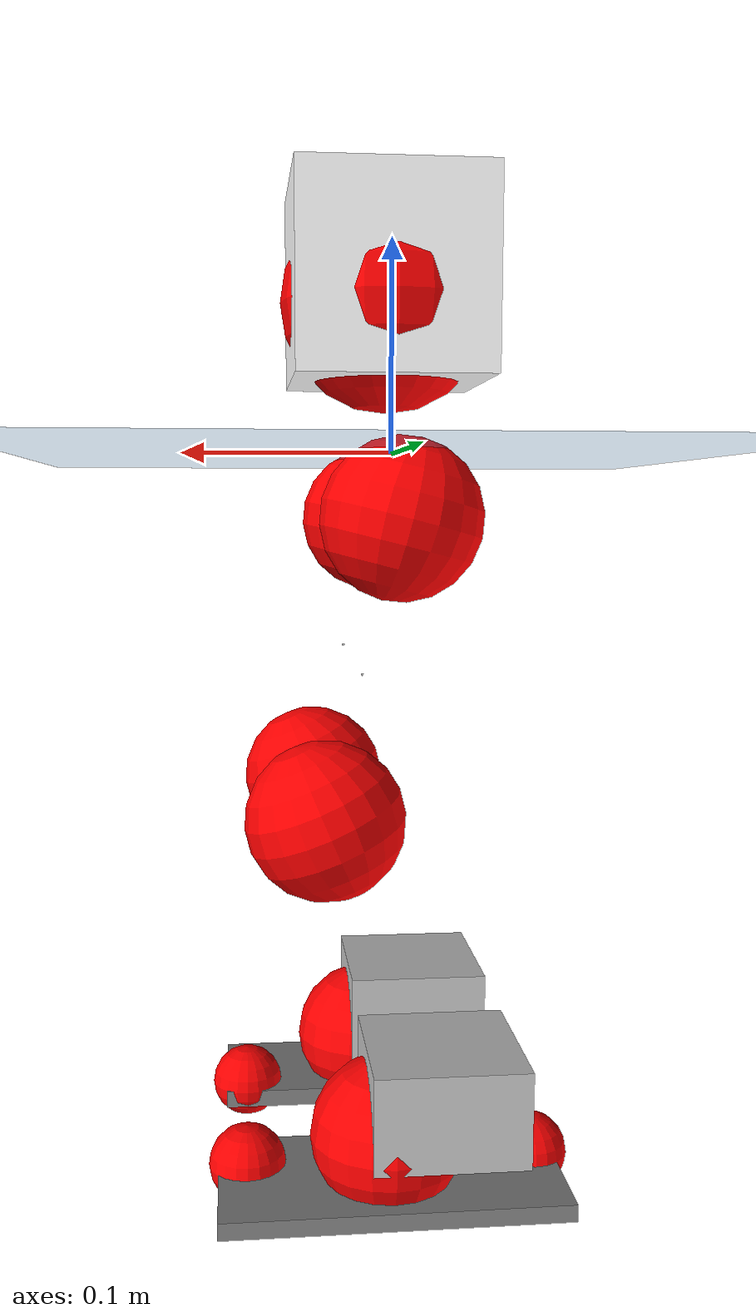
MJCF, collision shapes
<mujoco model="pi_12dof_release_v1">
  <compiler angle="radian" assetdir="assets" balanceinertia="true" inertiafromgeom="false"/>

  <option timestep="0.005" density="1.2" viscosity="2e-05"/>

  <size nkey="1"/>

  <visual>
    <quality shadowsize="8192"/>
    <map shadowclip="0.5"/>
  </visual>

  <default>
    <default class="/">
      <joint armature="0.01" damping="0.01" frictionloss="0.01"/>
      <geom contype="0" conaffinity="0" group="1" solref="-1000 -80"/>
      <site size="0.01 0.005 0.005" group="5"/>
      <general forcelimited="true" biastype="affine" gainprm="20" biasprm="0 -20 -0.5"/>
      <default class="foot">
        <geom size="0.0845 0.036 0.005" type="box" condim="6" group="4" priority="1" friction="0.9 0.2 0.2" solimp="0.015 1 0.005"/>
      </default>
      <default class="reward_collision_sphere">
        <geom group="5" rgba="1 0 0 1"/>
      </default>
    </default>
  </default>

  <asset>
    <texture type="skybox" colorspace="auto" name="//unnamed_texture_0" builtin="gradient" rgb1="0.95 0.95 0.95" rgb2="0.95 0.95 0.95" width="100" height="600"/>
    <texture type="2d" colorspace="auto" name="texplane" builtin="checker" rgb1="0.345 0.575 0.748" rgb2="0.345 0.575 0.748" markrgb="1 1 1" width="512" height="512"/>
    <material name="MatPlane" class="/" texture="texplane" texuniform="true" texrepeat="2 2" specular="0.9"/>
    <mesh name="baselink_1" class="/" file="baselink_1.STL"/>
    <mesh name="r_hip_pitch_link" class="/" file="r_hip_pitch_link.STL"/>
    <mesh name="r_hip_roll_link" class="/" file="r_hip_roll_link.STL"/>
    <mesh name="r_thigh_link" class="/" file="r_thigh_link.STL"/>
    <mesh name="r_calf_link" class="/" file="r_calf_link.STL"/>
    <mesh name="r_ankle_pitch_link" class="/" file="r_ankle_pitch_link.STL"/>
    <mesh name="r_ankle_roll_link" class="/" file="r_ankle_roll_link.STL"/>
    <mesh name="l_hip_pitch_link" class="/" file="l_hip_pitch_link.STL"/>
    <mesh name="l_hip_roll_link" class="/" file="l_hip_roll_link.STL"/>
    <mesh name="l_thigh_link" class="/" file="l_thigh_link.STL"/>
    <mesh name="l_calf_link" class="/" file="l_calf_link.STL"/>
    <mesh name="l_ankle_pitch_link" class="/" file="l_ankle_pitch_link.STL"/>
    <mesh name="l_ankle_roll_link" class="/" file="l_ankle_roll_link.STL"/>
  </asset>

  <worldbody>
    <geom name="floor" class="/" size="100 100 0.125" type="plane" group="0" material="MatPlane"/>
    <light name="toplight_shadow" class="/" pos="0 0 5" dir="0.0990148 0.0990148 -0.990148" type="directional" ambient="0.04 0.04 0.04" diffuse="0.55 0.55 0.55" specular="0.12 0.12 0.12"/>
    <light name="toplight_fill" class="/" pos="0 0 5" dir="0.0990148 0.0990148 -0.990148" type="directional" castshadow="false" ambient="0.04 0.04 0.04" diffuse="0.3 0.3 0.3" specular="0.08 0.08 0.08"/>
    <body name="trunk" pos="0.00263513 -0.000465772 -0.000106172" quat="0.999999 0.00072065 -0.000162049 -0.0010639">
      <inertial pos="-0.000338183 -0.000952835 0.0401426" quat="0.694788 0.0116176 0.0129325 0.719004" mass="1.58996" diaginertia="0.0101166 0.0020837 0.00386909"/>
      <joint name="//unnamed_joint_0" type="free"/>
      <geom name="//unnamed_geom_1" class="/" type="mesh" density="0" rgba="1 1 1 1" mesh="baselink_1"/>
      <geom name="//unnamed_geom_2" class="/" size="0.0457123 0.0457123 0.0457123" pos="0 0 0.0790518" type="box" rgba="1 1 1 1"/>
      <geom name="//unnamed_geom_3" class="reward_collision_sphere" size="0.0502836" pos="0 0 0.0691704"/>
      <site name="imu" class="/" pos="-0.00173432 0.00316147 0.0126622" size="0.00914247"/>
      <camera name="track" class="/" pos="0 -1.49395 0" quat="0.707107 0.707107 0 0" mode="trackcom"/>
      <camera name="ego_camera" class="/" pos="0.0755712 0 0.177867" quat="-0.5 -0.5 0.5 0.5"/>
      <body name="r_hip_pitch_link" pos="-0.000199006 -0.0159405 -0.0323709" quat="0.992195 -4.07694e-05 -0.124693 -0.000178213">
        <inertial pos="-2.16891e-05 -0.043917 -7.8525e-05" quat="-0.0193872 0.705686 -0.0286503 0.707679" mass="0.278832" diaginertia="0.000114983 2.26396e-05 7.81727e-05"/>
        <joint name="r_hip_pitch_joint" class="/" pos="0 0 0" axis="-0.000132733 -0.999971 -0.00760586" range="-1.75524 1.24068" armature="0.00949628" damping="0.0241382" frictionloss="0.00998685"/>
        <geom name="//unnamed_geom_4" class="/" type="mesh" density="0" rgba="0.75294 0.75294 0.75294 1" mesh="r_hip_pitch_link"/>
        <geom name="//unnamed_geom_5" class="/" size="0.000457123 0.000457123 0.000457123" type="box" rgba="0.75294 0.75294 0.75294 1"/>
        <body name="r_hip_roll_link" pos="0.000837458 -0.0417197 0.001023" quat="0.999999 0.000637685 -0.000788337 -0.000501988">
          <inertial pos="0.000665109 -0.00151355 -0.0631042" quat="0.705911 -0.0791288 -0.0824712 0.699018" mass="0.288292" diaginertia="0.000340412 6.35767e-05 0.000122153"/>
          <joint name="r_hip_roll_joint" class="/" pos="0 0 0" axis="-0.999957 -0.00244519 -0.00891073" stiffness="0.00179336" range="-0.0998172 0.462201" armature="0.00932103" damping="0" frictionloss="0.0101828"/>
          <geom name="//unnamed_geom_6" class="/" type="mesh" density="0" rgba="0.75294 0.75294 0.75294 1" mesh="r_hip_roll_link"/>
          <geom name="//unnamed_geom_7" class="/" size="0.000457123 0.000457123 0.000457123" type="box" rgba="0.75294 0.75294 0.75294 1"/>
          <geom name="//unnamed_geom_8" class="reward_collision_sphere" size="0.0365699"/>
          <body name="r_thigh_link" pos="-0.00183023 -0.00200473 -0.0680513" quat="1 -0.000478657 -0.000113359 -0.000179531">
            <inertial pos="-0.00186018 0.000952615 -0.0454022" quat="0.738265 0.674508 -0.000795916 0.00176749" mass="0.0860201" diaginertia="0.00013245 2.30946e-05 5.56675e-05"/>
            <joint name="r_thigh_joint" class="/" pos="0 0 0" axis="-0.000203966 -0.00150688 -0.999999" range="-0.343585 0.612057" armature="0.00878065" damping="0" frictionloss="0.00794099"/>
            <geom name="//unnamed_geom_9" class="/" type="mesh" density="0" rgba="0.75294 0.75294 0.75294 1" mesh="r_thigh_link"/>
            <geom name="//unnamed_geom_10" class="/" size="0.000457123 0.000457123 0.000457123" type="box" rgba="0.75294 0.75294 0.75294 1"/>
            <body name="r_calf_link" pos="-0.0017516 -0.00186236 -0.0723245" quat="0.947565 0.000169228 0.319562 -0.000953389">
              <inertial pos="-0.000200451 -0.00316408 -0.0687208" quat="0.999913 0.00497167 -0.00447762 0.0113744" mass="0.615312" diaginertia="0.00353671 0.000805473 0.000160242"/>
              <joint name="r_calf_joint" class="/" pos="0 0 0" axis="-0.00865001 -0.999952 -0.00455508" range="-1.59761 0.647465" armature="0.0093942" damping="0.00463941" frictionloss="0.0100326"/>
              <geom name="//unnamed_geom_11" class="/" type="mesh" density="0" rgba="0.75294 0.75294 0.75294 1" mesh="r_calf_link"/>
              <geom name="//unnamed_geom_12" class="/" size="0.000457123 0.000457123 0.000457123" type="box" rgba="0.75294 0.75294 0.75294 1"/>
              <geom name="//unnamed_geom_13" class="reward_collision_sphere" size="0.0365699"/>
              <body name="r_ankle_pitch_link" pos="0.000271755 -0.00224584 -0.138885" quat="0.980032 0.000134762 -0.198842 0.000186095">
                <inertial pos="0.00551875 0.000742052 -0.000398278" quat="0.00753401 0.709965 -0.00240928 0.704193" mass="0.136036" diaginertia="0.000317788 5.20111e-05 0.000115802"/>
                <joint name="r_ankle_pitch_joint" class="/" pos="0 0 0" axis="0.0103481 -0.999927 -0.00622195" range="-1.29903 0.50128" armature="0.00934326" damping="0" frictionloss="0.00950425"/>
                <geom name="//unnamed_geom_14" class="/" type="mesh" density="0" rgba="0.75294 0.75294 0.75294 1" mesh="r_ankle_pitch_link"/>
                <geom name="//unnamed_geom_15" class="/" size="0.0356556 0.0365699 0.0228562" type="box" rgba="0.75294 0.75294 0.75294 1"/>
                <body name="r_ankle_roll_link" pos="0.0760343 0.000830908 0.000420163" quat="1 1.5627e-05 8.15199e-06 2.8891e-05">
                  <inertial pos="-0.0237932 0.000604408 -0.0146546" quat="0.553421 0.430198 0.430082 0.568932" mass="0.392889" diaginertia="0.00117157 0.000239262 0.0002605"/>
                  <joint name="r_ankle_roll_joint" class="/" pos="0 0 0" axis="-0.9999 -0.010794 0.00908776" range="-0.20179 0.161637" armature="0.010347" damping="0.0128996" frictionloss="0.00928936"/>
                  <geom name="//unnamed_geom_16" class="/" type="mesh" density="0" rgba="0.75294 0.75294 0.75294 1" mesh="r_ankle_roll_link"/>
                  <geom name="//unnamed_geom_17" class="/" type="mesh" rgba="0.75294 0.75294 0.75294 1" mesh="r_ankle_roll_link"/>
                  <geom name="right_foot" class="foot" size="0.0776839 0.0313005 0.00436124" pos="-0.0513884 0 -0.0434785"/>
                  <geom name="//unnamed_geom_19" class="reward_collision_sphere" size="0.0365699" pos="-0.0503808 0 -0.019763"/>
                  <geom name="//unnamed_geom_20" class="reward_collision_sphere" size="0.0182849" pos="0.0151142 0.0149395 -0.0395259"/>
                  <geom name="//unnamed_geom_21" class="reward_collision_sphere" size="0.0182849" pos="-0.120914 0.0149395 -0.0395259"/>
                  <site name="right_foot" class="foot" pos="-0.0513884 0 -0.0434785" size="0.00914247"/>
                </body>
              </body>
            </body>
          </body>
        </body>
      </body>
      <body name="l_hip_pitch_link" pos="-9.45879e-05 0.01737 -0.0338197" quat="0.992228 2.51813e-05 -0.124434 -0.000134518">
        <inertial pos="0.000305791 0.0427643 -0.00191662" quat="-0.0402659 0.700427 0.0405517 0.711433" mass="0.303734" diaginertia="0.000132107 2.40534e-05 9.67085e-05"/>
        <joint name="l_hip_pitch_joint" class="/" pos="0 0 0" axis="0.00710997 0.999906 0.0117542" range="-1.26153 1.75529" armature="0.00903673" damping="0.0106944" frictionloss="0.00919023"/>
        <geom name="//unnamed_geom_22" class="/" type="mesh" density="0" rgba="0.75294 0.75294 0.75294 1" mesh="l_hip_pitch_link"/>
        <geom name="//unnamed_geom_23" class="/" size="0.000457123 0.000457123 0.000457123" type="box" rgba="0.75294 0.75294 0.75294 1"/>
        <body name="l_hip_roll_link" pos="0.000556267 0.0395224 0.00285956" quat="1 -1.42252e-05 6.79429e-05 -9.26728e-05">
          <inertial pos="-0.00113866 -0.000160905 -0.0611371" quat="0.699115 -0.0773475 -0.0807964 0.706207" mass="0.30267" diaginertia="0.000343891 6.31684e-05 0.000121519"/>
          <joint name="l_hip_roll_joint" class="/" pos="0 0 0" axis="-0.999997 0.00165971 0.00163754" range="-0.495969 0.158944" armature="0.00929517" damping="0.00399787" frictionloss="0.00948506"/>
          <geom name="//unnamed_geom_24" class="/" type="mesh" density="0" rgba="0.75294 0.75294 0.75294 1" mesh="l_hip_roll_link"/>
          <geom name="//unnamed_geom_25" class="/" size="0.000457123 0.000457123 0.000457123" type="box" rgba="0.75294 0.75294 0.75294 1"/>
          <geom name="//unnamed_geom_26" class="reward_collision_sphere" size="0.0365699"/>
          <body name="l_thigh_link" pos="0.000203825 0.000290544 -0.0706987" quat="1 0.00029204 -0.00024416 -1.12042e-05">
            <inertial pos="0.00116226 0.00123372 -0.0469329" quat="0.677181 0.735816 -0.00070102 3.1831e-06" mass="0.0852851" diaginertia="0.000127439 2.19365e-05 5.2219e-05"/>
            <joint name="l_thigh_joint" class="/" pos="0 0 0" axis="0.0013632 0.00109633 -0.999998" range="-0.591716 0.32975" armature="0.00928131" damping="0" frictionloss="0.00936031"/>
            <geom name="//unnamed_geom_27" class="/" type="mesh" density="0" rgba="0.75294 0.75294 0.75294 1" mesh="l_thigh_link"/>
            <geom name="//unnamed_geom_28" class="/" size="0.000457123 0.000457123 0.000457123" type="box" rgba="0.75294 0.75294 0.75294 1"/>
            <body name="l_calf_link" pos="-0.000459879 -0.000103995 -0.0683298" quat="0.947717 -0.0011611 0.319108 -0.00061766">
              <inertial pos="0.00302984 0.00384298 -0.0717573" quat="0.999911 0.00933456 0.00225296 0.00928588" mass="0.621279" diaginertia="0.00365917 0.000810162 0.00016405"/>
              <joint name="l_calf_joint" class="/" pos="0 0 0" axis="-0.00165951 0.999996 0.00226503" range="-0.642229 1.63552" armature="0.00873294" damping="0.00975774" frictionloss="0.00807073"/>
              <geom name="//unnamed_geom_29" class="/" type="mesh" density="0" rgba="0.75294 0.75294 0.75294 1" mesh="l_calf_link"/>
              <geom name="//unnamed_geom_30" class="/" size="0.000457123 0.000457123 0.000457123" type="box" rgba="0.75294 0.75294 0.75294 1"/>
              <geom name="//unnamed_geom_31" class="reward_collision_sphere" size="0.0365699"/>
              <body name="l_ankle_pitch_link" pos="0.00112126 0.000372005 -0.140812" quat="0.980079 9.34964e-05 -0.198608 -8.11317e-05">
                <inertial pos="0.00548228 -0.000942781 3.08492e-06" quat="-0.00313477 0.706765 0.00202332 0.707439" mass="0.13063" diaginertia="0.000322686 5.25187e-05 0.000112878"/>
                <joint name="l_ankle_pitch_joint" class="/" pos="0 0 0" axis="0.00269311 0.999994 -0.00197963" range="-0.506138 1.30332" armature="0.00922318" damping="0.0108184" frictionloss="0.00908533"/>
                <geom name="//unnamed_geom_32" class="/" type="mesh" density="0" rgba="0.75294 0.75294 0.75294 1" mesh="l_ankle_pitch_link"/>
                <geom name="//unnamed_geom_33" class="/" size="0.0356556 0.0365699 0.0228562" type="box" rgba="0.75294 0.75294 0.75294 1"/>
                <body name="l_ankle_roll_link" pos="0.0754874 0.000992427 0.000334787" quat="1 -2.97264e-05 1.24897e-05 1.93199e-05">
                  <inertial pos="-0.0266673 -5.33783e-05 -0.0148348" quat="0.557703 0.430713 0.434188 0.56119" mass="0.393579" diaginertia="0.00116539 0.000240349 0.000273911"/>
                  <joint name="l_ankle_roll_joint" class="/" pos="0 0 0" axis="-0.999922 -0.00884823 -0.00885065" range="-0.157086 0.153329" armature="0.00949258" damping="0.0184067" frictionloss="0.00932884"/>
                  <geom name="//unnamed_geom_34" class="/" type="mesh" density="0" rgba="0.75294 0.75294 0.75294 1" mesh="l_ankle_roll_link"/>
                  <geom name="//unnamed_geom_35" class="/" type="mesh" rgba="0.75294 0.75294 0.75294 1" mesh="l_ankle_roll_link"/>
                  <geom name="left_foot" class="foot" size="0.080309 0.0379159 0.0041039" pos="-0.0513884 0 -0.0434785"/>
                  <geom name="//unnamed_geom_37" class="reward_collision_sphere" size="0.0365699" pos="-0.0503808 0 -0.019763"/>
                  <geom name="//unnamed_geom_38" class="reward_collision_sphere" size="0.0182849" pos="0.0151142 -0.0149395 -0.0395259"/>
                  <geom name="//unnamed_geom_39" class="reward_collision_sphere" size="0.0182849" pos="-0.120914 -0.0149395 -0.0395259"/>
                  <site name="left_foot" class="foot" pos="-0.0513884 0 -0.0434785" size="0.00914247"/>
                </body>
              </body>
            </body>
          </body>
        </body>
      </body>
    </body>
  </worldbody>

  <contact>
    <pair class="/" geom1="floor" geom2="right_foot" name="//unnamed_contact_1"/>
    <pair class="/" geom1="floor" geom2="left_foot" name="//unnamed_contact_0"/>
  </contact>

  <actuator>
    <general name="r_hip_pitch_joint" class="/" joint="r_hip_pitch_joint" forcerange="-19.1251 19.1251" gainprm="18.6227" biasprm="0 -18.6227 -0.461157"/>
    <general name="r_hip_roll_joint" class="/" joint="r_hip_roll_joint" forcerange="-19.9565 19.9565" gainprm="18.6227" biasprm="0 -18.6227 -0.461157"/>
    <general name="r_thigh_joint" class="/" joint="r_thigh_joint" forcerange="-19.6471 19.6471" gainprm="18.6227" biasprm="0 -18.6227 -0.461157"/>
    <general name="r_calf_joint" class="/" joint="r_calf_joint" forcerange="-21.0889 21.0889" gainprm="18.6227" biasprm="0 -18.6227 -0.461157"/>
    <general name="r_ankle_pitch_joint" class="/" joint="r_ankle_pitch_joint" forcerange="-18.5568 18.5568" gainprm="18.6227" biasprm="0 -18.6227 -0.461157"/>
    <general name="r_ankle_roll_joint" class="/" joint="r_ankle_roll_joint" forcerange="-17.3566 17.3566" gainprm="18.6227" biasprm="0 -18.6227 -0.461157"/>
    <general name="l_hip_pitch_joint" class="/" joint="l_hip_pitch_joint" forcerange="-19.3372 19.3372" gainprm="18.6227" biasprm="0 -18.6227 -0.461157"/>
    <general name="l_hip_roll_joint" class="/" joint="l_hip_roll_joint" forcerange="-18.8313 18.8313" gainprm="18.6227" biasprm="0 -18.6227 -0.461157"/>
    <general name="l_thigh_joint" class="/" joint="l_thigh_joint" forcerange="-19.3336 19.3336" gainprm="18.6227" biasprm="0 -18.6227 -0.461157"/>
    <general name="l_calf_joint" class="/" joint="l_calf_joint" forcerange="-18.8718 18.8718" gainprm="18.6227" biasprm="0 -18.6227 -0.461157"/>
    <general name="l_ankle_pitch_joint" class="/" joint="l_ankle_pitch_joint" forcerange="-19.5083 19.5083" gainprm="18.6227" biasprm="0 -18.6227 -0.461157"/>
    <general name="l_ankle_roll_joint" class="/" joint="l_ankle_roll_joint" forcerange="-19.3698 19.3698" gainprm="18.6227" biasprm="0 -18.6227 -0.461157"/>
  </actuator>

  <sensor>
    <gyro site="imu" name="imu_angular_velocity"/>
    <velocimeter site="imu" name="imu_linear_velocity"/>
    <framelinvel objtype="site" objname="left_foot" name="left_foot_global_linear_velocity"/>
    <framelinvel objtype="site" objname="right_foot" name="right_foot_global_linear_velocity"/>
  </sensor>

  <keyframe>
    <key name="home" qpos="0 0 0.291 1 0 0 0 0.4 0 0 -0.8 0.4 0 -0.4 0 0 0.8 -0.4 0"/>
  </keyframe>
</mujoco>
